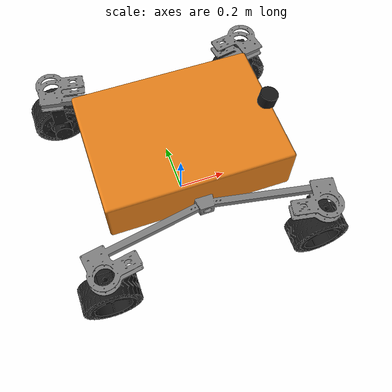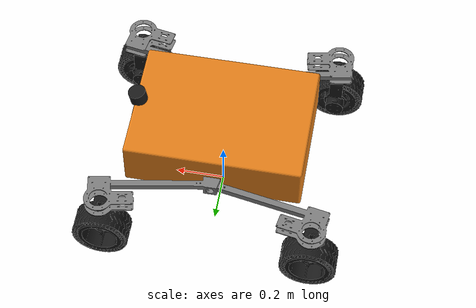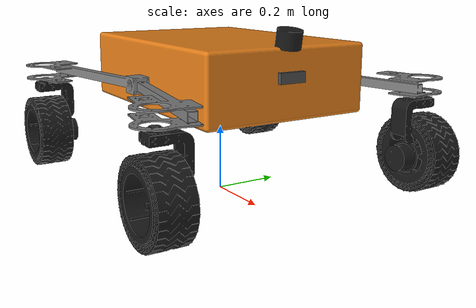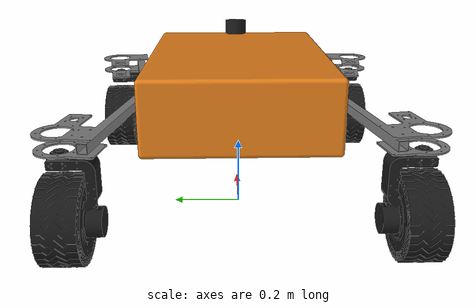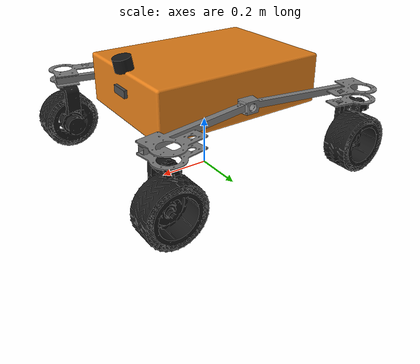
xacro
<?xml version="1.0"?>

<robot name="chaska_rover" xmlns:xacro="http://www.ros.org/wiki/xacro">

    <!-- Argument to enable simulation mode (disables real hardware) -->
    <xacro:arg name="is_simulation" default="false"/>
    <!-- When false, the ign_ros2_control plugin is omitted (use in unified URDF
         where chaska_robot.urdf.xacro provides its own single plugin instance) -->
    <xacro:arg name="with_control_plugin" default="true"/>

    <!-- Base model -->
    <xacro:include filename="$(find rover_description)/urdf/rover_base.xacro"/>

    <!-- Gazebo plugins and sensors (only for simulation) -->
    <xacro:include filename="$(find rover_description)/urdf/rover_gazebo.xacro"/>

    <!-- ROS2 Control: conditional between sim and real hardware -->
    <xacro:include filename="$(find rover_description)/urdf/rover_ros2_control.xacro"/>

</robot>

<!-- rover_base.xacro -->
<robot name="chaska_rover" xmlns:xacro="http://www.ros.org/wiki/xacro">

    <!-- ============================
         ROVER DIMENSIONS (parametric)
         ============================ -->
    <xacro:property name="chassis_length" value="0.710"/>
    <xacro:property name="chassis_width"  value="0.510"/>
    <xacro:property name="chassis_height" value="0.20"/>
    <xacro:property name="chassis_mass"   value="15.0"/>

    <xacro:property name="support_length" value="0.60"/>
    <xacro:property name="support_width"  value="0.10"/>
    <xacro:property name="support_height" value="0.10"/>
    <xacro:property name="support_mass"   value="1.0"/>

    <xacro:property name="yaw_size_x" value="0.10"/>
    <xacro:property name="yaw_size_y" value="0.10"/>
    <xacro:property name="yaw_size_z" value="0.15"/>
    <xacro:property name="yaw_mass"   value="1.0"/>

    <xacro:property name="wheel_radius" value="0.111"/>
    <xacro:property name="wheel_width"  value="0.12"/>
    <xacro:property name="wheel_mass"   value="0.8"/>

    <!-- wheel_support positions relative to base_link -->
    <xacro:property name="support_x_offset" value="0.0"/>
    <xacro:property name="support_y_offset" value="0.255"/>
    <xacro:property name="support_z_offset" value="0.075"/>

    <!-- yaw positions relative to wheel_support -->
    <xacro:property name="yaw_x_front"  value="0.419"/>
    <xacro:property name="yaw_x_rear"   value="-0.419"/>
    <xacro:property name="yaw_y_offset" value="0.169"/>
    <xacro:property name="yaw_z_offset" value="-0.0225"/>

    <!-- wheel positions relative to yaw -->
    <xacro:property name="wheel_x_offset" value="0.0"/>
    <xacro:property name="wheel_y_offset" value="0.0119"/>
    <xacro:property name="wheel_z_offset" value="-0.1765"/>

    <!-- ============================
         INERTIA MACROS
         ============================ -->

    <!-- Solid box: x=length, y=width, z=height -->
    <xacro:macro name="box_inertia" params="m x y z">
        <inertial>
            <origin xyz="0 0 0" rpy="0 0 0"/>
            <mass value="${m}"/>
            <inertia
                ixx="${(m/12)*(y*y + z*z)}" ixy="0" ixz="0"
                iyy="${(m/12)*(x*x + z*z)}" iyz="0"
                izz="${(m/12)*(x*x + y*y)}"/>
        </inertial>
    </xacro:macro>

    <!-- Solid cylinder: axis along Y (wheel convention) -->
    <xacro:macro name="cylinder_inertia_y" params="m r l">
        <inertial>
            <origin xyz="0 0 0" rpy="0 0 0"/>
            <mass value="${m}"/>
            <inertia
                ixx="${(m/12)*(3*r*r + l*l)}" ixy="0" ixz="0"
                iyy="${(m/2)*r*r}"             iyz="0"
                izz="${(m/12)*(3*r*r + l*l)}"/>
        </inertial>
    </xacro:macro>

    <!-- ============================
         LINK MACROS
         ============================ -->

    <xacro:macro name="wheel_support" params="name x_pos y_pos reflect passive:=0">
        <link name="${name}_link">
            <visual>
                <origin xyz="0 0 0" rpy="0 0 ${-1.5708*reflect}"/>
                <geometry>
                    <mesh filename="package://rover_description/meshes/wheel_support.stl" scale="0.001 0.001 0.001"/>
                </geometry>
                <material name="gray">
                    <color rgba="0.5 0.5 0.5 1.0"/>
                </material>
            </visual>
            <collision>
                <origin xyz="0 0 0" rpy="0 0 0"/>
                <geometry>
                    <box size="${support_length} ${support_width} ${support_height}"/>
                </geometry>
            </collision>
            <xacro:box_inertia m="${support_mass}"
                               x="${support_length}"
                               y="${support_width}"
                               z="${support_height}"/>
        </link>

        <!-- Fixed side: rigid attachment to chassis -->
        <xacro:if value="${not passive}">
            <joint name="${name}_joint" type="fixed">
                <parent link="base_link"/>
                <child link="${name}_link"/>
                <origin xyz="${x_pos} ${y_pos} ${support_z_offset}" rpy="0 0 0"/>
            </joint>
        </xacro:if>

        <xacro:unless value="${not passive}">
            <joint name="${name}_joint" type="revolute">
                <parent link="base_link"/>
                <child link="${name}_link"/>
                <origin xyz="${x_pos} ${y_pos} ${support_z_offset}" rpy="0 0 0"/>
                <axis xyz="0 1 0"/>
                <limit lower="-0.45" upper="0.45" effort="0" velocity="100"/>
                <dynamics damping="5.0" friction="0.5"/>
            </joint>
        </xacro:unless>
    </xacro:macro>

    <xacro:macro name="rover_yaw" params="name parent x_pos y_pos reflect">
        <link name="${name}_yaw">
            <visual>
                <origin xyz="0 0 0" rpy="0 0 ${-1.5708*reflect}"/>
                <geometry>
                    <mesh filename="package://rover_description/meshes/yaw.stl" scale="0.001 0.001 0.001"/>
                </geometry>
                <material name="black">
                    <color rgba="0.1 0.1 0.1 1.0"/>
                </material>
            </visual>
            <collision>
                <origin xyz="0 0 0" rpy="0 0 0"/>
                <geometry>
                    <box size="${yaw_size_x} ${yaw_size_y} ${yaw_size_z}"/>
                </geometry>
            </collision>
            <xacro:box_inertia m="${yaw_mass}"
                               x="${yaw_size_x}"
                               y="${yaw_size_y}"
                               z="${yaw_size_z}"/>
        </link>

        <joint name="${name}_yaw_joint" type="continuous">
            <parent link="${parent}_link"/>
            <child link="${name}_yaw"/>
            <origin xyz="${x_pos} ${y_pos} ${yaw_z_offset}" rpy="0 0 0"/>
            <axis xyz="0 0 1"/>
            <dynamics damping="0.2"/>
        </joint>
    </xacro:macro>

    <xacro:macro name="rover_wheel" params="name parent x_pos y_pos reflect">
        <link name="${name}_wheel">
            <visual>
                <origin xyz="0 0 0" rpy="0 0 ${1.5708*reflect}"/>
                <geometry>
                    <mesh filename="package://rover_description/meshes/wheel.stl" scale="0.001 0.001 0.001"/>
                </geometry>
                <material name="black">
                    <color rgba="0.1 0.1 0.1 1.0"/>
                </material>
            </visual>
            <collision>
                <origin xyz="0 0 0" rpy="1.5708 0 0"/>
                <geometry>
                    <cylinder radius="${wheel_radius}" length="${wheel_width}"/>
                </geometry>
            </collision>
            <xacro:cylinder_inertia_y m="${wheel_mass}" r="${wheel_radius}" l="${wheel_width}"/>
        </link>

        <joint name="${name}_wheel_joint" type="continuous">
            <parent link="${parent}_yaw"/>
            <child link="${name}_wheel"/>
            <origin xyz="${x_pos} ${y_pos} ${wheel_z_offset}" rpy="0 0 0"/>
            <axis xyz="0 1 0"/>
            <dynamics damping="0.2"/>
        </joint>
    </xacro:macro>

    <!-- ============================
         LINKS
         ============================ -->

    <link name="base_footprint"/>

    <link name="base_link">
        <visual>
            <origin xyz="0 0 0" rpy="0 0 1.5708"/>
            <geometry>
                <mesh filename="package://rover_description/meshes/base_link.stl" scale="0.001 0.001 0.001"/>
            </geometry>
            <material name="orange">
                <color rgba="0.9 0.5 0.1 1.0"/>
            </material>
        </visual>
        <collision>
            <origin xyz="0 0 0" rpy="0 0 0"/>
            <geometry>
                <box size="${chassis_length} ${chassis_width} ${chassis_height}"/>
            </geometry>
        </collision>
        <xacro:box_inertia m="${chassis_mass}"
                           x="${chassis_length}"
                           y="${chassis_width}"
                           z="${chassis_height}"/>
    </link>

    <link name="imu">
        <visual>
            <origin xyz="0 0 0" rpy="0 0 0"/>
            <geometry>
                <box size="0.03 0.03 0.01"/>
            </geometry>
            <material name="gray">
                <color rgba="0.3 0.3 0.3 1"/>
            </material>
        </visual>
    </link>

    <link name="laser">
        <visual>
            <origin xyz="0 0 0" rpy="0 0 0"/>
            <geometry>
                <cylinder radius="0.035" length="0.05"/>
            </geometry>
            <material name="black">
                <color rgba="0.1 0.1 0.1 1"/>
            </material>
        </visual>
    </link>

    <link name="camera">
        <visual>
            <origin xyz="0 0 0" rpy="0 0 0"/>
            <geometry>
                <box size="0.025 0.08 0.03"/>
            </geometry>
            <material name="gray">
                <color rgba="0.3 0.3 0.3 1"/>
            </material>
        </visual>
    </link>

    <link name="camera_optical_frame"/>

    <!-- ============================
         JOINTS
         ============================ -->

    <joint name="base_joint" type="fixed">
        <parent link="base_footprint"/>
        <child link="base_link"/>
        <origin xyz="0 0 0.280" rpy="0 0 0"/>
    </joint>

    <!-- ── Level 1: wheel supports ── -->
    <!-- Left: fixed — anchors the chassis, no rotation -->
    <xacro:wheel_support name="left_support"  x_pos="${support_x_offset}" y_pos=" ${support_y_offset}" reflect="-1" passive="0"/>
    <!-- Right: passive revolute around X — terrain compliance (±15°, damped) -->
    <xacro:wheel_support name="right_support" x_pos="${support_x_offset}" y_pos="-${support_y_offset}" reflect=" 1" passive="1"/>

    <!-- ── Level 2: yaw links (steering, one per wheel) ── -->
    <xacro:rover_yaw name="front_left"  parent="left_support"  x_pos="${yaw_x_front}" y_pos=" ${yaw_y_offset}" reflect="-1"/>
    <xacro:rover_yaw name="front_right" parent="right_support" x_pos="${yaw_x_front}" y_pos="-${yaw_y_offset}" reflect=" 1"/>
    <xacro:rover_yaw name="rear_left"   parent="left_support"  x_pos="${yaw_x_rear}"  y_pos=" ${yaw_y_offset}" reflect="-1"/>
    <xacro:rover_yaw name="rear_right"  parent="right_support" x_pos="${yaw_x_rear}"  y_pos="-${yaw_y_offset}" reflect=" 1"/>

    <!-- ── Level 3: wheels (drive, child of their yaw) ── -->
    <xacro:rover_wheel name="front_left"  parent="front_left"  x_pos="${wheel_x_offset}" y_pos="-${wheel_y_offset}" reflect="-1"/>
    <xacro:rover_wheel name="front_right" parent="front_right" x_pos="${wheel_x_offset}" y_pos=" ${wheel_y_offset}" reflect=" 1"/>
    <xacro:rover_wheel name="rear_left"   parent="rear_left"   x_pos="${wheel_x_offset}" y_pos="-${wheel_y_offset}" reflect="-1"/>
    <xacro:rover_wheel name="rear_right"  parent="rear_right"  x_pos="${wheel_x_offset}" y_pos=" ${wheel_y_offset}" reflect=" 1"/>

    <!-- ── Sensors ── -->
    <joint name="imu_joint" type="fixed">
        <parent link="base_link"/>
        <child link="imu"/>
        <origin xyz="0 0 ${chassis_height/2 + 0.01}" rpy="0 0 0"/>
    </joint>

    <!-- Livox 3D LiDAR: montado adelante-arriba del chasis,
         inclinado -10° en pitch para captar el suelo delante del rover -->
    <joint name="laser_joint" type="fixed">
        <parent link="base_link"/>
        <child link="laser"/>
        <origin xyz="${chassis_length/2 - 0.01} 0 ${chassis_height/2 + 0.12}" rpy="0 0.1745 0"/>
    </joint>

    <joint name="camera_joint" type="fixed">
        <parent link="base_link"/>
        <child link="camera"/>
        <origin xyz="${chassis_length/2} 0 ${chassis_height/2 + 0.02}" rpy="0 0 0"/>
    </joint>

    <joint name="camera_optical_joint" type="fixed">
        <parent link="camera"/>
        <child link="camera_optical_frame"/>
        <origin xyz="0 0 0" rpy="-1.5708 0 -1.5708"/>
    </joint>

</robot>
